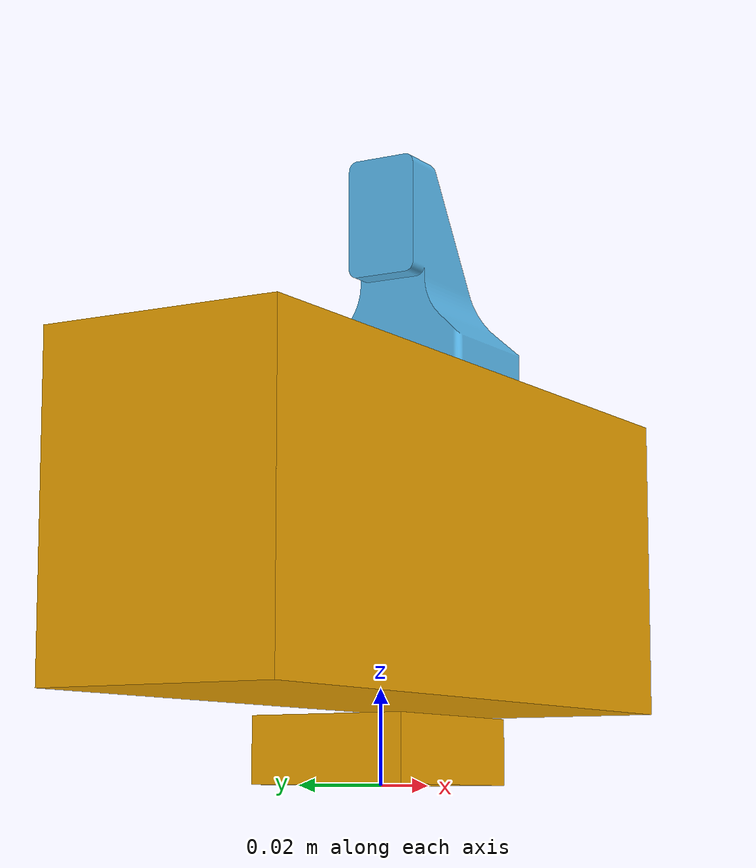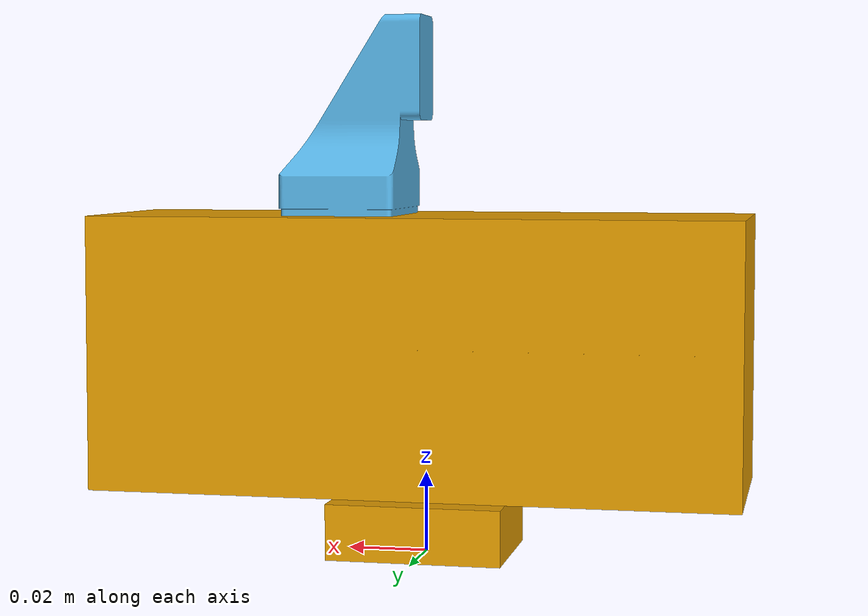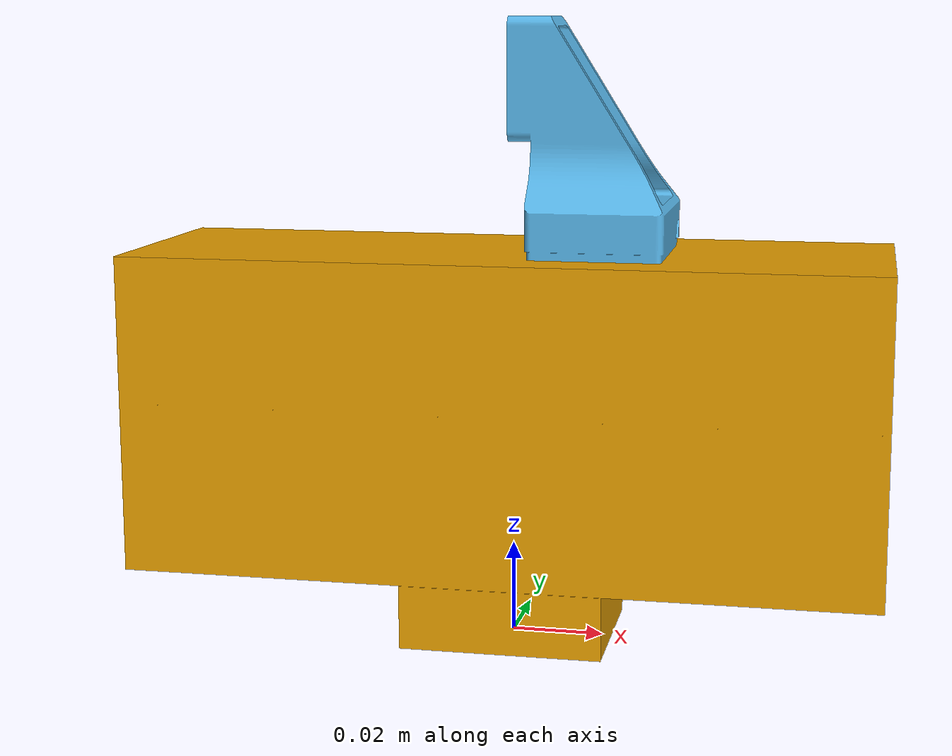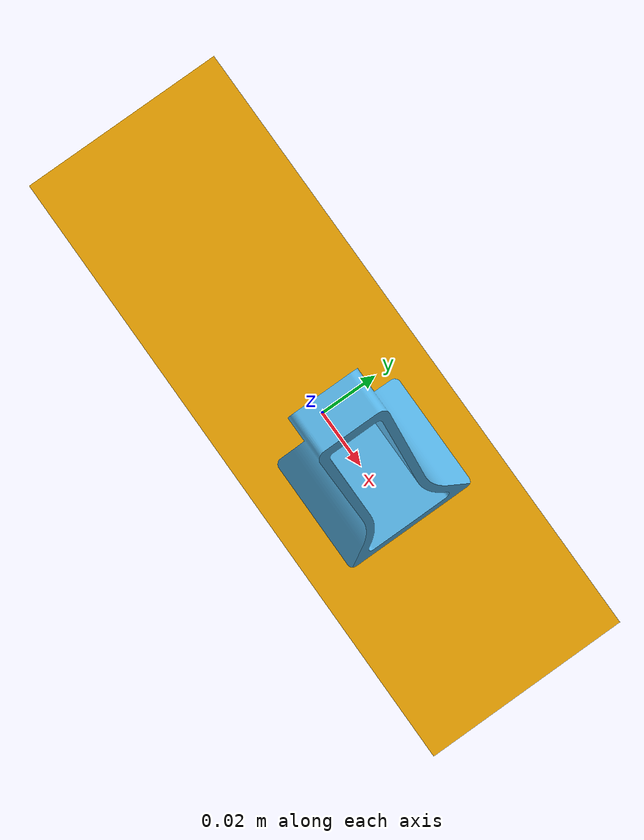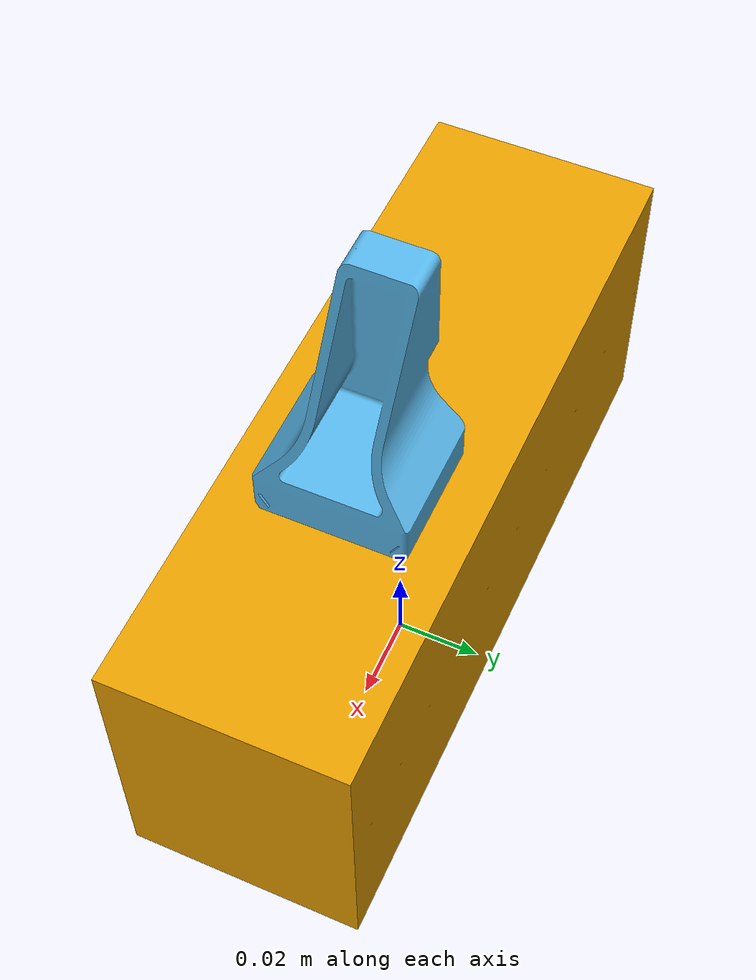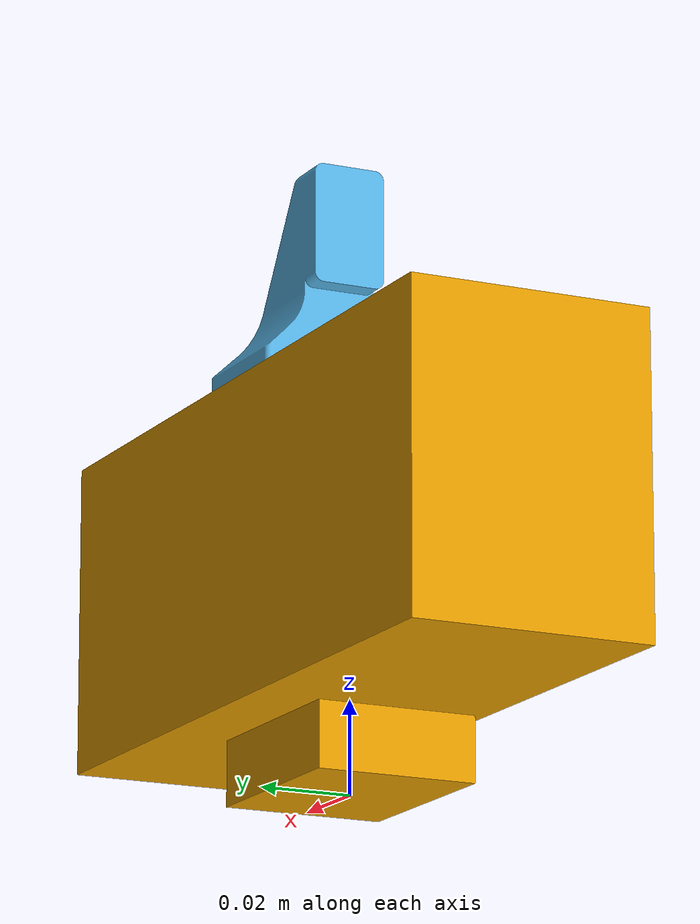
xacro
<?xml version="1.0"?>
<robot xmlns:xacro="http://www.ros.org/wiki/xacro" name="ulixhand">

    <!-- run: xacro ulixarm.urdf > ulixarm.xacro -->

    <!-- CONSTANTS -->

    <xacro:property name="PI" value="3.14159265359"/>
    <xacro:property name="velocity_limit_DMJ3507"   value="15.0"/>
    <xacro:property name="effort_limit_DMJ3507"     value="3.0"/>

    <!-- LINKS -->

    <link name="base_link">
        <visual>
            <origin xyz="0. 0. 0."/>
            <geometry>
                <mesh filename="package://ulixarm_description/meshes/visual/gripper_base.stl"/>
            </geometry>
        </visual>
        <collision>
            <origin xyz="0. 0. 0."/>
            <geometry>
                <mesh filename="package://ulixarm_description/meshes/collision/gripper_base.stl"/>
            </geometry>
        </collision>
    </link>

    <link name="finger_right">
        <visual>
            <origin xyz="0. 0. 0."/>
            <geometry>
                <mesh filename="package://ulixarm_description/meshes/visual/finger.stl"/>
            </geometry>
        </visual>
        <collision>
            <origin xyz="0. 0. 0."/>
            <geometry>
                <mesh filename="package://ulixarm_description/meshes/collision/finger.stl"/>
            </geometry>
        </collision>
        <inertial>
            <mass value="1.0"/>
            <inertia ixx="1.0" ixy="0.0" ixz="0.0" iyy="1.0" iyz="0.0" izz="1.0"/>
        </inertial>
    </link>

    <link name="finger_left">
        <visual>
            <origin xyz="0. 0. 0."/>
            <geometry>
                <mesh filename="package://ulixarm_description/meshes/visual/finger.stl"/>
            </geometry>
        </visual>
        <collision>
            <origin xyz="0. 0. 0."/>
            <geometry>
                <mesh filename="package://ulixarm_description/meshes/collision/finger.stl"/>
            </geometry>
        </collision>
        <inertial>
            <mass value="1.0"/>
            <inertia ixx="1.0" ixy="0.0" ixz="0.0" iyy="1.0" iyz="0.0" izz="1.0"/>
        </inertial>
    </link>

    <!-- JOINTS -->

    <joint name="finger_right_joint" type="prismatic">
        <origin xyz="0. 0. 0.1219" rpy="0. 0. 0."/>
        <parent link="base_link"/>
        <child link="finger_right"/>
        <axis xyz="1 0 0"/>
        <limit lower="0" upper="0.05" velocity="${velocity_limit_DMJ3507}" effort="${effort_limit_DMJ3507}"/>
    </joint>

    <joint name="finger_left_joint" type="prismatic">
        <origin xyz="0. 0. 0.1219" rpy="0. 0. 0."/>
        <parent link="base_link"/>
        <child link="finger_left"/>
        <axis xyz="1 0 0"/>
        <mimic joint="finger_right_joint" multiplier="-1" offset="0"/>
        <limit lower="0" upper="0.05" velocity="${velocity_limit_DMJ3507}" effort="${effort_limit_DMJ3507}"/>
    </joint>

</robot>
